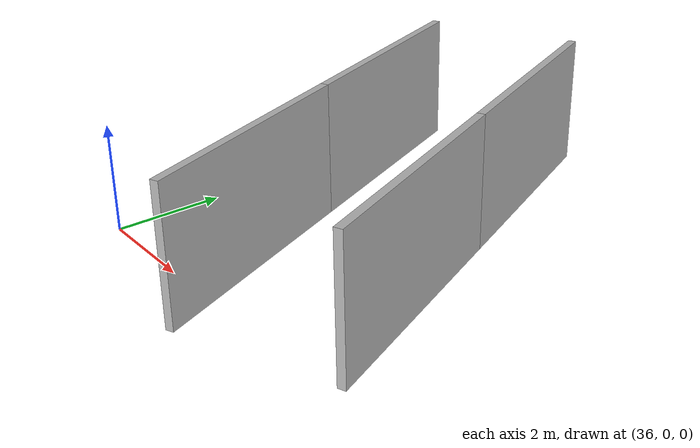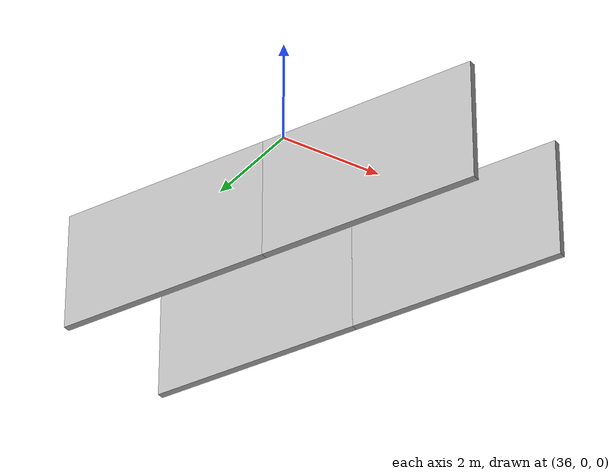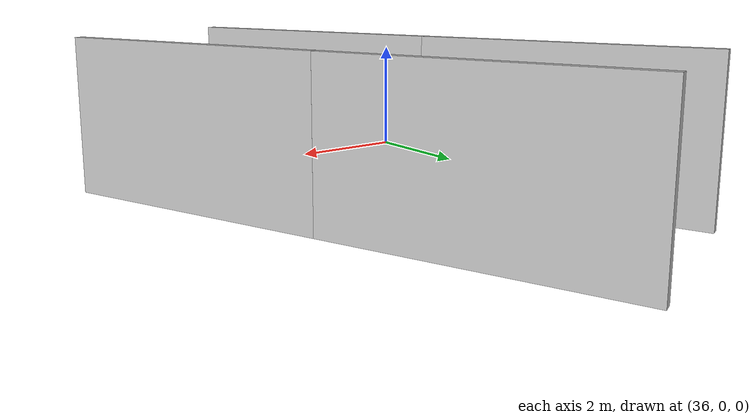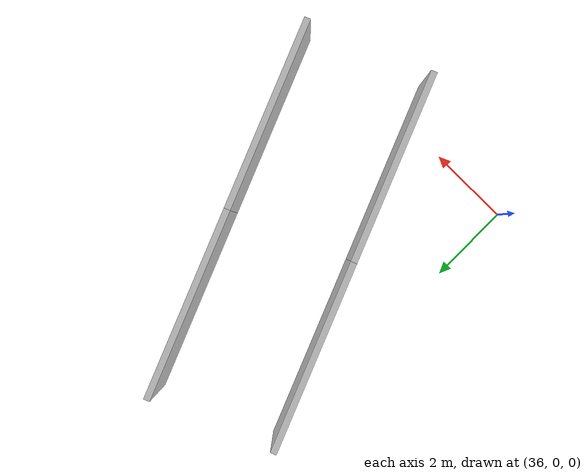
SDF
<?xml version="1.0" ?>
<sdf version="1.6">
  <model name="sps_4921">
    <pose frame="">0 0 0 0 -0 0</pose>
    <static>1</static>
    <self_collide>0</self_collide>
    <allow_auto_disable>0</allow_auto_disable>
    <link name="Wall4704">
      <kinematic>0</kinematic>
      <gravity>1</gravity>
      <self_collide>0</self_collide>
      <collision name="collision">
        <geometry>
          <box>
            <size>4.52446 0.15 2.5</size>
          </box>
        </geometry>
        <pose frame="">0 0 0 0 -0 0</pose>
      </collision>
      <visual name="visual">
        <geometry>
          <box>
            <size>4.52446 0.15 2.5</size>
          </box>
        </geometry>
        <pose frame="">0 0 0 0 -0 0</pose>
        <cast_shadows>1</cast_shadows>
        <transparency>0.0</transparency>
      </visual>
      <pose frame="">36.9397 5.41289 1.25 0 0 -1.18646</pose>
    </link>
    <link name="Wall4705">
      <kinematic>0</kinematic>
      <gravity>1</gravity>
      <self_collide>0</self_collide>
      <collision name="collision">
        <geometry>
          <box>
            <size>4.5268 0.15 2.5</size>
          </box>
        </geometry>
        <pose frame="">0 0 0 0 -0 0</pose>
      </collision>
      <visual name="visual">
        <geometry>
          <box>
            <size>4.5268 0.15 2.5</size>
          </box>
        </geometry>
        <pose frame="">0 0 0 0 -0 0</pose>
        <cast_shadows>1</cast_shadows>
        <transparency>0.0</transparency>
      </visual>
      <pose frame="">38.6365 1.21739 1.25 0 0 -1.18648</pose>
    </link>
    <link name="Wall6441">
      <kinematic>0</kinematic>
      <gravity>1</gravity>
      <self_collide>0</self_collide>
      <collision name="collision">
        <geometry>
          <box>
            <size>4.52454 0.15 2.5</size>
          </box>
        </geometry>
        <pose frame="">0 0 0 0 -0 0</pose>
      </collision>
      <visual name="visual">
        <geometry>
          <box>
            <size>4.52454 0.15 2.5</size>
          </box>
        </geometry>
        <pose frame="">0 0 0 0 -0 0</pose>
        <cast_shadows>1</cast_shadows>
        <transparency>0.0</transparency>
      </visual>
      <pose frame="">39.721 6.53761 1.25 0 0 -1.18653</pose>
    </link>
    <link name="Wall6442">
      <kinematic>0</kinematic>
      <gravity>1</gravity>
      <self_collide>0</self_collide>
      <collision name="collision">
        <geometry>
          <box>
            <size>4.52646 0.15 2.5</size>
          </box>
        </geometry>
        <pose frame="">0 0 0 0 -0 0</pose>
      </collision>
      <visual name="visual">
        <geometry>
          <box>
            <size>4.52646 0.15 2.5</size>
          </box>
        </geometry>
        <pose frame="">0 0 0 0 -0 0</pose>
        <cast_shadows>1</cast_shadows>
        <transparency>0.0</transparency>
      </visual>
      <pose frame="">41.4177 2.34221 1.25 0 0 -1.18645</pose>
    </link>
  </model>
</sdf>
